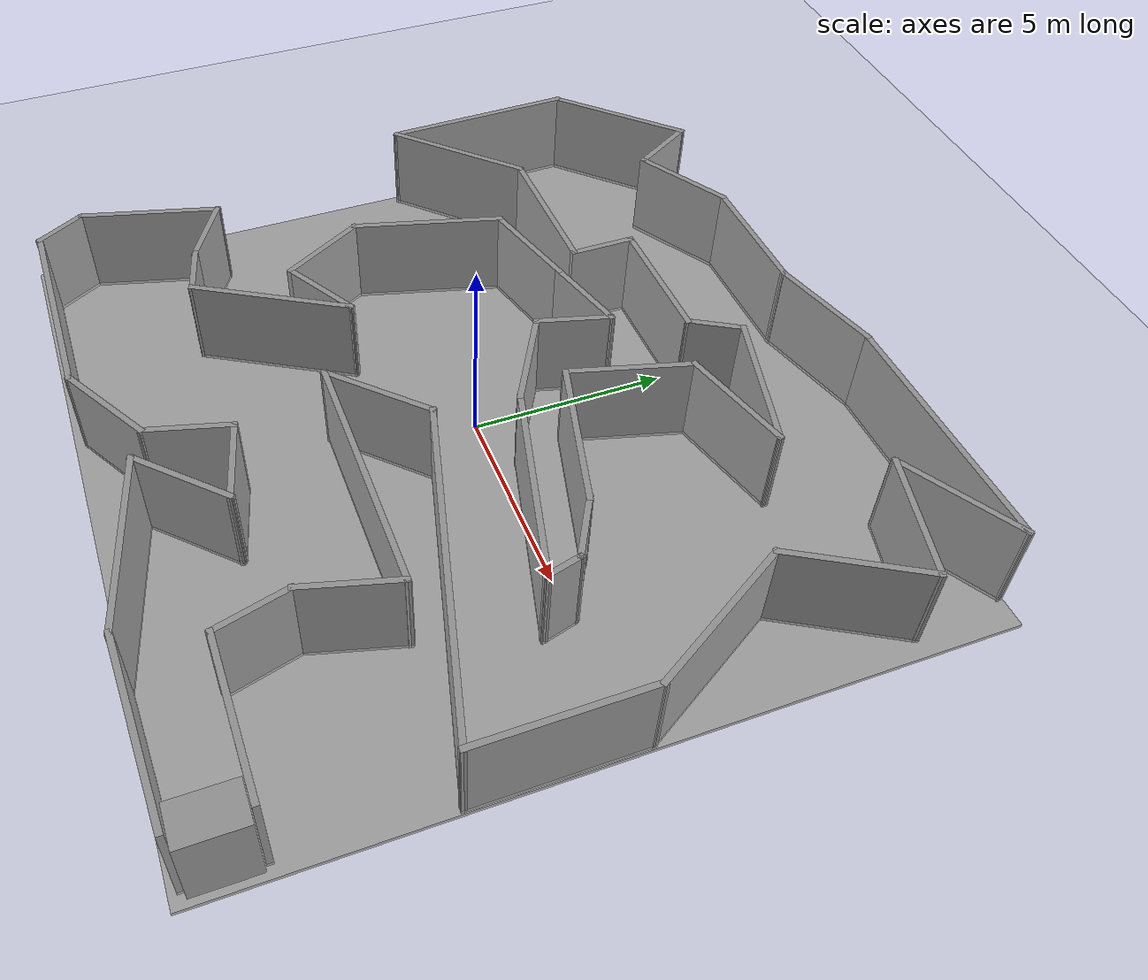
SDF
<sdf version="1.7">
 <world name="default">
  <model name="ground_plane">
   <static>1</static>
   <link name="link">
    <collision name="collision">
     <geometry><plane><normal>0 0 1</normal><size>100 100</size></plane></geometry>
     <surface><friction><ode><mu>100</mu><mu2>50</mu2></ode></friction></surface>
    </collision>
    <visual name="visual">
     <cast_shadows>0</cast_shadows>
     <geometry><plane><normal>0 0 1</normal><size>100 100</size></plane></geometry>
     <material>
      <script><uri>file://media/materials/scripts/gazebo.material</uri><name>Gazebo/Grey</name></script>
     </material>
    </visual>
   </link>
  </model>
  <light name="sun" type="directional">
   <pose>0 0 10 0 -0 0</pose>
   <diffuse>0.8 0.8 0.8 1</diffuse>
   <specular>0.2 0.2 0.2 1</specular>
   <attenuation>
    <range>1000</range>
    <constant>0.9</constant>
    <linear>0.01</linear>
    <quadratic>0.001</quadratic>
   </attenuation>
   <direction>-0.5 0.1 -0.9</direction>
   <spot><inner_angle>0</inner_angle><outer_angle>0</outer_angle><falloff>0</falloff></spot>
  </light>
  <scene><shadows>0</shadows><ambient>0.4 0.4 0.4 1</ambient><background>0.7 0.7 0.7 1</background></scene>
  <physics type="ode">
   <real_time_update_rate>1000</real_time_update_rate>
   <max_step_size>0.001</max_step_size>
   <real_time_factor>1</real_time_factor>
   <ode>
    <solver>
     <type>quick</type>
     <iters>150</iters>
     <precon_iters>0</precon_iters>
     <sor>1.4</sor>
     <use_dynamic_moi_rescaling>1</use_dynamic_moi_rescaling>
    </solver>
    <constraints>
     <cfm>1e-05</cfm>
     <erp>0.2</erp>
     <contact_max_correcting_vel>2000</contact_max_correcting_vel>
     <contact_surface_layer>0.01</contact_surface_layer>
    </constraints>
   </ode>
  </physics>
  <gravity>0 0 -9.8</gravity>
  <magnetic_field>6e-06 2.3e-05 -4.2e-05</magnetic_field>
  <atmosphere type="adiabatic"/>
  <audio><device>default</device></audio>
  <spherical_coordinates>
   <surface_model>EARTH_WGS84</surface_model>
   <latitude_deg>0</latitude_deg>
   <longitude_deg>0</longitude_deg>
   <elevation>0</elevation>
   <heading_deg>0</heading_deg>
  </spherical_coordinates>
  <model name="Maze_Thingy">
   <pose>-0.102453 -0.090928 -2.71563 0 -0 0</pose>
   <link name="Floor_0">
    <collision name="Floor_0_Collision">
     <geometry><box><size>19.2451 18.831 0.1</size></box></geometry>
     <pose>0 0 0.05 0 -0 0</pose>
    </collision>
    <visual name="Floor_0_Visual">
     <pose>0 0 0.05 0 -0 0</pose>
     <geometry><box><size>19.2451 18.831 0.1</size></box></geometry>
     <material>
      <script><uri>file://media/materials/scripts/gazebo.material</uri><name>Gazebo/Grey</name></script>
      <ambient>1 1 1 1</ambient>
     </material>
     <meta><layer>1</layer></meta>
    </visual>
    <pose>0 0 2.5 0 -0 0</pose>
   </link>
   <link name="Wall_0">
    <collision name="Wall_0_Collision">
     <geometry><box><size>2.5 0.15 2.5</size></box></geometry>
     <pose>0 0 1.25 0 -0 0</pose>
    </collision>
    <visual name="Wall_0_Visual">
     <pose>0 0 1.25 0 -0 0</pose>
     <geometry><box><size>2.5 0.15 2.5</size></box></geometry>
     <material>
      <script><uri>file://media/materials/scripts/gazebo.material</uri><name>Gazebo/Grey</name></script>
      <ambient>1 1 1 1</ambient>
     </material>
     <meta><layer>0</layer></meta>
    </visual>
    <pose>-1.93084 -1.51595 0 0 -0 0</pose>
   </link>
   <link name="Wall_10">
    <collision name="Wall_10_Collision">
     <geometry><box><size>3 0.15 2.5</size></box></geometry>
     <pose>0 0 1.25 0 -0 0</pose>
    </collision>
    <visual name="Wall_10_Visual">
     <pose>0 0 1.25 0 -0 0</pose>
     <geometry><box><size>3 0.15 2.5</size></box></geometry>
     <material>
      <script><uri>file://media/materials/scripts/gazebo.material</uri><name>Gazebo/Grey</name></script>
      <ambient>1 1 1 1</ambient>
     </material>
     <meta><layer>1</layer></meta>
    </visual>
    <pose>3.28617 5.33739 2.5 0 -0 -2.87979</pose>
   </link>
   <link name="Wall_11">
    <collision name="Wall_11_Collision">
     <geometry><box><size>3.25 0.15 2.5</size></box></geometry>
     <pose>0 0 1.25 0 -0 0</pose>
    </collision>
    <visual name="Wall_11_Visual">
     <pose>0 0 1.25 0 -0 0</pose>
     <geometry><box><size>3.25 0.15 2.5</size></box></geometry>
     <material>
      <script><uri>file://media/materials/scripts/gazebo.material</uri><name>Gazebo/Grey</name></script>
      <ambient>1 1 1 1</ambient>
     </material>
     <meta><layer>1</layer></meta>
    </visual>
    <pose>1.50855 3.47138 2.5 0 -0 -1.8326</pose>
   </link>
   <link name="Wall_12">
    <collision name="Wall_12_Collision">
     <geometry><box><size>4 0.15 2.5</size></box></geometry>
     <pose>0 0 1.25 0 -0 0</pose>
    </collision>
    <visual name="Wall_12_Visual">
     <pose>0 0 1.25 0 -0 0</pose>
     <geometry><box><size>4 0.15 2.5</size></box></geometry>
     <material>
      <script><uri>file://media/materials/scripts/gazebo.material</uri><name>Gazebo/Grey</name></script>
      <ambient>1 1 1 1</ambient>
     </material>
     <meta><layer>1</layer></meta>
    </visual>
    <pose>2.96679 1.47597 2.5 0 -0 -0.261799</pose>
   </link>
   <link name="Wall_13">
    <collision name="Wall_13_Collision">
     <geometry><box><size>1.75 0.15 2.5</size></box></geometry>
     <pose>0 0 1.25 0 -0 0</pose>
    </collision>
    <visual name="Wall_13_Visual">
     <pose>0 0 1.25 0 -0 0</pose>
     <geometry><box><size>1.75 0.15 2.5</size></box></geometry>
     <material>
      <script><uri>file://media/materials/scripts/gazebo.material</uri><name>Gazebo/Grey</name></script>
      <ambient>1 1 1 1</ambient>
     </material>
     <meta><layer>1</layer></meta>
    </visual>
    <pose>5.51902 0.577745 2.5 0 -0 -0.523599</pose>
   </link>
   <link name="Wall_14">
    <collision name="Wall_14_Collision">
     <geometry><box><size>1 0.15 2.5</size></box></geometry>
     <pose>0 0 1.25 0 -0 0</pose>
    </collision>
    <visual name="Wall_14_Visual">
     <pose>0 0 1.25 0 -0 0</pose>
     <geometry><box><size>1 0.15 2.5</size></box></geometry>
     <material>
      <script><uri>file://media/materials/scripts/gazebo.material</uri><name>Gazebo/Grey</name></script>
      <ambient>1 1 1 1</ambient>
     </material>
     <meta><layer>1</layer></meta>
    </visual>
    <pose>6.32184 -0.232774 2.5 0 -0 -1.309</pose>
   </link>
   <link name="Wall_15">
    <collision name="Wall_15_Collision">
     <geometry><box><size>5.25 0.15 2.5</size></box></geometry>
     <pose>0 0 1.25 0 -0 0</pose>
    </collision>
    <visual name="Wall_15_Visual">
     <pose>0 0 1.25 0 -0 0</pose>
     <geometry><box><size>5.25 0.15 2.5</size></box></geometry>
     <material>
      <script><uri>file://media/materials/scripts/gazebo.material</uri><name>Gazebo/Grey</name></script>
      <ambient>1 1 1 1</ambient>
     </material>
     <meta><layer>1</layer></meta>
    </visual>
    <pose>3.96872 0.016696 2.5 0 -0 2.87979</pose>
   </link>
   <link name="Wall_16">
    <collision name="Wall_16_Collision">
     <geometry><box><size>2.75 0.15 2.5</size></box></geometry>
     <pose>0 0 1.25 0 -0 0</pose>
    </collision>
    <visual name="Wall_16_Visual">
     <pose>0 0 1.25 0 -0 0</pose>
     <geometry><box><size>2.75 0.15 2.5</size></box></geometry>
     <material>
      <script><uri>file://media/materials/scripts/gazebo.material</uri><name>Gazebo/Grey</name></script>
      <ambient>1 1 1 1</ambient>
     </material>
     <meta><layer>1</layer></meta>
    </visual>
    <pose>0.379778 1.32668 2.5 0 -0 2.61799</pose>
   </link>
   <link name="Wall_17">
    <collision name="Wall_17_Collision">
     <geometry><box><size>2 0.15 2.5</size></box></geometry>
     <pose>0 0 1.25 0 -0 0</pose>
    </collision>
    <visual name="Wall_17_Visual">
     <pose>0 0 1.25 0 -0 0</pose>
     <geometry><box><size>2 0.15 2.5</size></box></geometry>
     <material>
      <script><uri>file://media/materials/scripts/gazebo.material</uri><name>Gazebo/Grey</name></script>
      <ambient>1 1 1 1</ambient>
     </material>
     <meta><layer>1</layer></meta>
    </visual>
    <pose>-0.506647 2.87017 2.5 0 -0 1.309</pose>
   </link>
   <link name="Wall_18">
    <collision name="Wall_18_Collision">
     <geometry><box><size>2.25 0.15 2.5</size></box></geometry>
     <pose>0 0 1.25 0 -0 0</pose>
    </collision>
    <visual name="Wall_18_Visual">
     <pose>0 0 1.25 0 -0 0</pose>
     <geometry><box><size>2.25 0.15 2.5</size></box></geometry>
     <material>
      <script><uri>file://media/materials/scripts/gazebo.material</uri><name>Gazebo/Grey</name></script>
      <ambient>1 1 1 1</ambient>
     </material>
     <meta><layer>1</layer></meta>
    </visual>
    <pose>-1.28146 3.49189 2.5 0 -0 -2.87979</pose>
   </link>
   <link name="Wall_19">
    <collision name="Wall_19_Collision">
     <geometry><box><size>2.75 0.15 2.5</size></box></geometry>
     <pose>0 0 1.25 0 -0 0</pose>
    </collision>
    <visual name="Wall_19_Visual">
     <pose>0 0 1.25 0 -0 0</pose>
     <geometry><box><size>2.75 0.15 2.5</size></box></geometry>
     <material>
      <script><uri>file://media/materials/scripts/gazebo.material</uri><name>Gazebo/Grey</name></script>
      <ambient>1 1 1 1</ambient>
     </material>
     <meta><layer>1</layer></meta>
    </visual>
    <pose>-3.55139 2.88366 2.5 0 -0 -2.87979</pose>
   </link>
   <link name="Wall_20">
    <collision name="Wall_20_Collision">
     <geometry><box><size>4 0.15 2.5</size></box></geometry>
     <pose>0 0 1.25 0 -0 0</pose>
    </collision>
    <visual name="Wall_20_Visual">
     <pose>0 0 1.25 0 -0 0</pose>
     <geometry><box><size>4 0.15 2.5</size></box></geometry>
     <material>
      <script><uri>file://media/materials/scripts/gazebo.material</uri><name>Gazebo/Grey</name></script>
      <ambient>1 1 1 1</ambient>
     </material>
     <meta><layer>1</layer></meta>
    </visual>
    <pose>-5.30532 0.687791 2.5 0 -0 -1.8326</pose>
   </link>
   <link name="Wall_21">
    <collision name="Wall_21_Collision">
     <geometry><box><size>2.5 0.15 2.5</size></box></geometry>
     <pose>0 0 1.25 0 -0 0</pose>
    </collision>
    <visual name="Wall_21_Visual">
     <pose>0 0 1.25 0 -0 0</pose>
     <geometry><box><size>2.5 0.15 2.5</size></box></geometry>
     <material>
      <script><uri>file://media/materials/scripts/gazebo.material</uri><name>Gazebo/Grey</name></script>
      <ambient>1 1 1 1</ambient>
     </material>
     <meta><layer>1</layer></meta>
    </visual>
    <pose>-5.21604 -2.1892 2.5 0 -0 -1.0472</pose>
   </link>
   <link name="Wall_22">
    <collision name="Wall_22_Collision">
     <geometry><box><size>2.25 0.15 2.5</size></box></geometry>
     <pose>0 0 1.25 0 -0 0</pose>
    </collision>
    <visual name="Wall_22_Visual">
     <pose>0 0 1.25 0 -0 0</pose>
     <geometry><box><size>2.25 0.15 2.5</size></box></geometry>
     <material>
      <script><uri>file://media/materials/scripts/gazebo.material</uri><name>Gazebo/Grey</name></script>
      <ambient>1 1 1 1</ambient>
     </material>
     <meta><layer>1</layer></meta>
    </visual>
    <pose>-3.71922 -2.68178 2.5 0 -0 0.523599</pose>
   </link>
   <link name="Wall_23">
    <collision name="Wall_23_Collision">
     <geometry><box><size>4.25 0.15 2.5</size></box></geometry>
     <pose>0 0 1.25 0 -0 0</pose>
    </collision>
    <visual name="Wall_23_Visual">
     <pose>0 0 1.25 0 -0 0</pose>
     <geometry><box><size>4.25 0.15 2.5</size></box></geometry>
     <material>
      <script><uri>file://media/materials/scripts/gazebo.material</uri><name>Gazebo/Grey</name></script>
      <ambient>1 1 1 1</ambient>
     </material>
     <meta><layer>1</layer></meta>
    </visual>
    <pose>-3.83489 -3.93213 2.5 0 -0 -2.0944</pose>
   </link>
   <link name="Wall_24">
    <collision name="Wall_24_Collision">
     <geometry><box><size>1.5 0.15 2.5</size></box></geometry>
     <pose>0 0 1.25 0 -0 0</pose>
    </collision>
    <visual name="Wall_24_Visual">
     <pose>0 0 1.25 0 -0 0</pose>
     <geometry><box><size>1.5 0.15 2.5</size></box></geometry>
     <material>
      <script><uri>file://media/materials/scripts/gazebo.material</uri><name>Gazebo/Grey</name></script>
      <ambient>1 1 1 1</ambient>
     </material>
     <meta><layer>1</layer></meta>
    </visual>
    <pose>-5.51189 -5.53278 2.5 0 -0 2.87979</pose>
   </link>
   <link name="Wall_25">
    <collision name="Wall_25_Collision">
     <geometry><box><size>2 0.15 2.5</size></box></geometry>
     <pose>0 0 1.25 0 -0 0</pose>
    </collision>
    <visual name="Wall_25_Visual">
     <pose>0 0 1.25 0 -0 0</pose>
     <geometry><box><size>2 0.15 2.5</size></box></geometry>
     <material>
      <script><uri>file://media/materials/scripts/gazebo.material</uri><name>Gazebo/Grey</name></script>
      <ambient>1 1 1 1</ambient>
     </material>
     <meta><layer>1</layer></meta>
    </visual>
    <pose>-6.96496 -4.89557 2.5 0 -0 2.61799</pose>
   </link>
   <link name="Wall_26">
    <collision name="Wall_26_Collision">
     <geometry><box><size>3.75 0.15 2.5</size></box></geometry>
     <pose>0 0 1.25 0 -0 0</pose>
    </collision>
    <visual name="Wall_26_Visual">
     <pose>0 0 1.25 0 -0 0</pose>
     <geometry><box><size>3.75 0.15 2.5</size></box></geometry>
     <material>
      <script><uri>file://media/materials/scripts/gazebo.material</uri><name>Gazebo/Grey</name></script>
      <ambient>1 1 1 1</ambient>
     </material>
     <meta><layer>1</layer></meta>
    </visual>
    <pose>-8.23191 -6.17174 2.5 0 -0 -1.8326</pose>
   </link>
   <link name="Wall_27">
    <collision name="Wall_27_Collision">
     <geometry><box><size>1.5 0.15 2.5</size></box></geometry>
     <pose>0 0 1.25 0 -0 0</pose>
    </collision>
    <visual name="Wall_27_Visual">
     <pose>0 0 1.25 0 -0 0</pose>
     <geometry><box><size>1.5 0.15 2.5</size></box></geometry>
     <material>
      <script><uri>file://media/materials/scripts/gazebo.material</uri><name>Gazebo/Grey</name></script>
      <ambient>1 1 1 1</ambient>
     </material>
     <meta><layer>1</layer></meta>
    </visual>
    <pose>-8.36029 -8.49497 2.5 0 -0 -1.0472</pose>
   </link>
   <link name="Wall_28">
    <collision name="Wall_28_Collision">
     <geometry><box><size>5.5 0.15 2.5</size></box></geometry>
     <pose>0 0 1.25 0 -0 0</pose>
    </collision>
    <visual name="Wall_28_Visual">
     <pose>0 0 1.25 0 -0 0</pose>
     <geometry><box><size>5.5 0.15 2.5</size></box></geometry>
     <material>
      <script><uri>file://media/materials/scripts/gazebo.material</uri><name>Gazebo/Grey</name></script>
      <ambient>1 1 1 1</ambient>
     </material>
     <meta><layer>1</layer></meta>
    </visual>
    <pose>-5.34779 -9.07954 2.5 0 -0 0</pose>
   </link>
   <link name="Wall_29">
    <collision name="Wall_29_Collision">
     <geometry><box><size>2.75 0.15 2.5</size></box></geometry>
     <pose>0 0 1.25 0 -0 0</pose>
    </collision>
    <visual name="Wall_29_Visual">
     <pose>0 0 1.25 0 -0 0</pose>
     <geometry><box><size>2.75 0.15 2.5</size></box></geometry>
     <material>
      <script><uri>file://media/materials/scripts/gazebo.material</uri><name>Gazebo/Grey</name></script>
      <ambient>1 1 1 1</ambient>
     </material>
     <meta><layer>1</layer></meta>
    </visual>
    <pose>-1.54695 -8.42954 2.5 0 -0 0.523599</pose>
   </link>
   <link name="Wall_30">
    <collision name="Wall_30_Collision">
     <geometry><box><size>2.25 0.15 2.5</size></box></geometry>
     <pose>0 0 1.25 0 -0 0</pose>
    </collision>
    <visual name="Wall_30_Visual">
     <pose>0 0 1.25 0 -0 0</pose>
     <geometry><box><size>2.25 0.15 2.5</size></box></geometry>
     <material>
      <script><uri>file://media/materials/scripts/gazebo.material</uri><name>Gazebo/Grey</name></script>
      <ambient>1 1 1 1</ambient>
     </material>
     <meta><layer>1</layer></meta>
    </visual>
    <pose>-0.14936 -6.76532 2.5 0 -0 1.309</pose>
   </link>
   <link name="Wall_31">
    <collision name="Wall_31_Collision">
     <geometry><box><size>2.25 0.15 2.5</size></box></geometry>
     <pose>0 0 1.25 0 -0 0</pose>
    </collision>
    <visual name="Wall_31_Visual">
     <pose>0 0 1.25 0 -0 0</pose>
     <geometry><box><size>2.25 0.15 2.5</size></box></geometry>
     <material>
      <script><uri>file://media/materials/scripts/gazebo.material</uri><name>Gazebo/Grey</name></script>
      <ambient>1 1 1 1</ambient>
     </material>
     <meta><layer>1</layer></meta>
    </visual>
    <pose>1.13662 -6.02286 2.5 0 -0 -0.261799</pose>
   </link>
   <link name="Wall_32">
    <collision name="Wall_32_Collision">
     <geometry><box><size>2.75 0.15 2.5</size></box></geometry>
     <pose>0 0 1.25 0 -0 0</pose>
    </collision>
    <visual name="Wall_32_Visual">
     <pose>0 0 1.25 0 -0 0</pose>
     <geometry><box><size>2.75 0.15 2.5</size></box></geometry>
     <material>
      <script><uri>file://media/materials/scripts/gazebo.material</uri><name>Gazebo/Grey</name></script>
      <ambient>1 1 1 1</ambient>
     </material>
     <meta><layer>1</layer></meta>
    </visual>
    <pose>1.23161 -7.21386 2.5 0 -0 -2.35619</pose>
   </link>
   <link name="Wall_33">
    <collision name="Wall_33_Collision">
     <geometry><box><size>4.75 0.15 2.5</size></box></geometry>
     <pose>0 0 1.25 0 -0 0</pose>
    </collision>
    <visual name="Wall_33_Visual">
     <pose>0 0 1.25 0 -0 0</pose>
     <geometry><box><size>4.75 0.15 2.5</size></box></geometry>
     <material>
      <script><uri>file://media/materials/scripts/gazebo.material</uri><name>Gazebo/Grey</name></script>
      <ambient>1 1 1 1</ambient>
     </material>
     <meta><layer>1</layer></meta>
    </visual>
    <pose>2.534 -8.72838 2.5 0 -0 -0.261799</pose>
   </link>
   <link name="Wall_37">
    <collision name="Wall_37_Collision">
     <geometry><box><size>4 0.15 2.5</size></box></geometry>
     <pose>0 0 1.25 0 -0 0</pose>
    </collision>
    <visual name="Wall_37_Visual">
     <pose>0 0 1.25 0 -0 0</pose>
     <geometry><box><size>4 0.15 2.5</size></box></geometry>
     <material>
      <script><uri>file://media/materials/scripts/gazebo.material</uri><name>Gazebo/Grey</name></script>
      <ambient>1 1 1 1</ambient>
     </material>
     <meta><layer>1</layer></meta>
    </visual>
    <pose>-8.15531 7.5164 2.5 0 -0 0.785398</pose>
   </link>
   <link name="Wall_38">
    <collision name="Wall_38_Collision">
     <geometry><box><size>2 0.15 2.5</size></box></geometry>
     <pose>0 0 1.25 0 -0 0</pose>
    </collision>
    <visual name="Wall_38_Visual">
     <pose>0 0 1.25 0 -0 0</pose>
     <geometry><box><size>2 0.15 2.5</size></box></geometry>
     <material>
      <script><uri>file://media/materials/scripts/gazebo.material</uri><name>Gazebo/Grey</name></script>
      <ambient>1 1 1 1</ambient>
     </material>
     <meta><layer>1</layer></meta>
    </visual>
    <pose>-6.33164 8.07651 2.5 0 -0 -1.0472</pose>
   </link>
   <link name="Wall_39">
    <collision name="Wall_39_Collision">
     <geometry><box><size>2.75 0.15 2.5</size></box></geometry>
     <pose>0 0 1.25 0 -0 0</pose>
    </collision>
    <visual name="Wall_39_Visual">
     <pose>0 0 1.25 0 -0 0</pose>
     <geometry><box><size>2.75 0.15 2.5</size></box></geometry>
     <material>
      <script><uri>file://media/materials/scripts/gazebo.material</uri><name>Gazebo/Grey</name></script>
      <ambient>1 1 1 1</ambient>
     </material>
     <meta><layer>1</layer></meta>
    </visual>
    <pose>-4.7433 7.92543 2.5 0 -0 0.523599</pose>
   </link>
   <link name="Wall_4">
    <collision name="Wall_4_Collision">
     <geometry><box><size>4 0.15 2.5</size></box></geometry>
     <pose>0 0 1.25 0 -0 0</pose>
    </collision>
    <visual name="Wall_4_Visual">
     <pose>0 0 1.25 0 -0 0</pose>
     <geometry><box><size>4 0.15 2.5</size></box></geometry>
     <material>
      <script><uri>file://media/materials/scripts/gazebo.material</uri><name>Gazebo/Grey</name></script>
      <ambient>1 1 1 1</ambient>
     </material>
     <meta><layer>1</layer></meta>
    </visual>
    <pose>-4.76472 3.86882 2.5 0 -0 0</pose>
   </link>
   <link name="Wall_41">
    <collision name="Wall_41_Collision">
     <geometry><box><size>3.5 0.15 2.5</size></box></geometry>
     <pose>0 0 1.25 0 -0 0</pose>
    </collision>
    <visual name="Wall_41_Visual">
     <pose>0 0 1.25 0 -0 0</pose>
     <geometry><box><size>3.5 0.15 2.5</size></box></geometry>
     <material>
      <script><uri>file://media/materials/scripts/gazebo.material</uri><name>Gazebo/Grey</name></script>
      <ambient>1 1 1 1</ambient>
     </material>
     <meta><layer>1</layer></meta>
    </visual>
    <pose>-1.94247 8.57543 2.5 0 -0 0</pose>
   </link>
   <link name="Wall_42">
    <collision name="Wall_42_Collision">
     <geometry><box><size>3 0.15 2.5</size></box></geometry>
     <pose>0 0 1.25 0 -0 0</pose>
    </collision>
    <visual name="Wall_42_Visual">
     <pose>0 0 1.25 0 -0 0</pose>
     <geometry><box><size>3 0.15 2.5</size></box></geometry>
     <material>
      <script><uri>file://media/materials/scripts/gazebo.material</uri><name>Gazebo/Grey</name></script>
      <ambient>1 1 1 1</ambient>
     </material>
     <meta><layer>1</layer></meta>
    </visual>
    <pose>1.10898 8.94425 2.5 0 -0 0.261799</pose>
   </link>
   <link name="Wall_43">
    <collision name="Wall_43_Collision">
     <geometry><box><size>6.5 0.15 2.5</size></box></geometry>
     <pose>0 0 1.25 0 -0 0</pose>
    </collision>
    <visual name="Wall_43_Visual">
     <pose>0 0 1.25 0 -0 0</pose>
     <geometry><box><size>6.5 0.15 2.5</size></box></geometry>
     <material>
      <script><uri>file://media/materials/scripts/gazebo.material</uri><name>Gazebo/Grey</name></script>
      <ambient>1 1 1 1</ambient>
     </material>
     <meta><layer>1</layer></meta>
    </visual>
    <pose>5.66042 9.31307 2.5 0 -0 0</pose>
   </link>
   <link name="Wall_44">
    <collision name="Wall_44_Collision">
     <geometry><box><size>3.25 0.15 2.5</size></box></geometry>
     <pose>0 0 1.25 0 -0 0</pose>
    </collision>
    <visual name="Wall_44_Visual">
     <pose>0 0 1.25 0 -0 0</pose>
     <geometry><box><size>3.25 0.15 2.5</size></box></geometry>
     <material>
      <script><uri>file://media/materials/scripts/gazebo.material</uri><name>Gazebo/Grey</name></script>
      <ambient>1 1 1 1</ambient>
     </material>
     <meta><layer>1</layer></meta>
    </visual>
    <pose>7.49308 8.53807 2.5 0 -0 -2.61799</pose>
   </link>
   <link name="Wall_45">
    <collision name="Wall_45_Collision">
     <geometry><box><size>3.25 0.15 2.5</size></box></geometry>
     <pose>0 0 1.25 0 -0 0</pose>
    </collision>
    <visual name="Wall_45_Visual">
     <pose>0 0 1.25 0 -0 0</pose>
     <geometry><box><size>3.25 0.15 2.5</size></box></geometry>
     <material>
      <script><uri>file://media/materials/scripts/gazebo.material</uri><name>Gazebo/Grey</name></script>
      <ambient>1 1 1 1</ambient>
     </material>
     <meta><layer>1</layer></meta>
    </visual>
    <pose>7.64793 7.3619 2.5 0 -0 -0.261799</pose>
   </link>
   <link name="Wall_46">
    <collision name="Wall_46_Collision">
     <geometry><box><size>3.5 0.15 2.5</size></box></geometry>
     <pose>0 0 1.25 0 -0 0</pose>
    </collision>
    <visual name="Wall_46_Visual">
     <pose>0 0 1.25 0 -0 0</pose>
     <geometry><box><size>3.5 0.15 2.5</size></box></geometry>
     <material>
      <script><uri>file://media/materials/scripts/gazebo.material</uri><name>Gazebo/Grey</name></script>
      <ambient>1 1 1 1</ambient>
     </material>
     <meta><layer>1</layer></meta>
    </visual>
    <pose>8.30761 5.51014 2.5 0 -0 -2.0944</pose>
   </link>
   <link name="Wall_47">
    <collision name="Wall_47_Collision">
     <geometry><box><size>4.25 0.15 2.5</size></box></geometry>
     <pose>0 0 1.25 0 -0 0</pose>
    </collision>
    <visual name="Wall_47_Visual">
     <pose>0 0 1.25 0 -0 0</pose>
     <geometry><box><size>4.25 0.15 2.5</size></box></geometry>
     <material>
      <script><uri>file://media/materials/scripts/gazebo.material</uri><name>Gazebo/Grey</name></script>
      <ambient>1 1 1 1</ambient>
     </material>
     <meta><layer>1</layer></meta>
    </visual>
    <pose>8.49511 2.28419 2.5 0 -0 -1.0472</pose>
   </link>
   <link name="Wall_48">
    <collision name="Wall_48_Collision">
     <geometry><box><size>4.25 0.15 2.5</size></box></geometry>
     <pose>0 0 1.25 0 -0 0</pose>
    </collision>
    <visual name="Wall_48_Visual">
     <pose>0 0 1.25 0 -0 0</pose>
     <geometry><box><size>4.25 0.15 2.5</size></box></geometry>
     <material>
      <script><uri>file://media/materials/scripts/gazebo.material</uri><name>Gazebo/Grey</name></script>
      <ambient>1 1 1 1</ambient>
     </material>
     <meta><layer>1</layer></meta>
    </visual>
    <pose>9.52011 -1.54116 2.5 0 -0 -1.5708</pose>
   </link>
   <link name="Wall_49">
    <collision name="Wall_49_Collision">
     <geometry><box><size>8.75 0.15 2.5</size></box></geometry>
     <pose>0 0 1.25 0 -0 0</pose>
    </collision>
    <visual name="Wall_49_Visual">
     <pose>0 0 1.25 0 -0 0</pose>
     <geometry><box><size>8.75 0.15 2.5</size></box></geometry>
     <material>
      <script><uri>file://media/materials/scripts/gazebo.material</uri><name>Gazebo/Grey</name></script>
      <ambient>1 1 1 1</ambient>
     </material>
     <meta><layer>1</layer></meta>
    </visual>
    <pose>5.36663 -2.47824 2.5 0 -0 2.87979</pose>
   </link>
   <link name="Wall_5">
    <collision name="Wall_5_Collision">
     <geometry><box><size>1.75 0.15 2.5</size></box></geometry>
     <pose>0 0 1.25 0 -0 0</pose>
    </collision>
    <visual name="Wall_5_Visual">
     <pose>0 0 1.25 0 -0 0</pose>
     <geometry><box><size>1.75 0.15 2.5</size></box></geometry>
     <material>
      <script><uri>file://media/materials/scripts/gazebo.material</uri><name>Gazebo/Grey</name></script>
      <ambient>1 1 1 1</ambient>
     </material>
     <meta><layer>1</layer></meta>
    </visual>
    <pose>-2.83972 4.66882 2.5 0 -0 1.5708</pose>
   </link>
   <link name="Wall_50">
    <collision name="Wall_50_Collision">
     <geometry><box><size>3 0.15 2.5</size></box></geometry>
     <pose>0 0 1.25 0 -0 0</pose>
    </collision>
    <visual name="Wall_50_Visual">
     <pose>0 0 1.25 0 -0 0</pose>
     <geometry><box><size>3 0.15 2.5</size></box></geometry>
     <material>
      <script><uri>file://media/materials/scripts/gazebo.material</uri><name>Gazebo/Grey</name></script>
      <ambient>1 1 1 1</ambient>
     </material>
     <meta><layer>1</layer></meta>
    </visual>
    <pose>0.205522 -2.37295 2.5 0 -0 -2.35619</pose>
   </link>
   <link name="Wall_51">
    <collision name="Wall_51_Collision">
     <geometry><box><size>6.5 0.15 2.5</size></box></geometry>
     <pose>0 0 1.25 0 -0 0</pose>
    </collision>
    <visual name="Wall_51_Visual">
     <pose>0 0 1.25 0 -0 0</pose>
     <geometry><box><size>6.5 0.15 2.5</size></box></geometry>
     <material>
      <script><uri>file://media/materials/scripts/gazebo.material</uri><name>Gazebo/Grey</name></script>
      <ambient>1 1 1 1</ambient>
     </material>
     <meta><layer>1</layer></meta>
    </visual>
    <pose>2.3729 -3.38057 2.5 0 -0 0</pose>
   </link>
   <link name="Wall_52">
    <collision name="Wall_52_Collision">
     <geometry><box><size>2.5 0.15 2.5</size></box></geometry>
     <pose>0 0 1.25 0 -0 0</pose>
    </collision>
    <visual name="Wall_52_Visual">
     <pose>0 0 1.25 0 -0 0</pose>
     <geometry><box><size>2.5 0.15 2.5</size></box></geometry>
     <material>
      <script><uri>file://media/materials/scripts/gazebo.material</uri><name>Gazebo/Grey</name></script>
      <ambient>1 1 1 1</ambient>
     </material>
     <meta><layer>1</layer></meta>
    </visual>
    <pose>5.24378 -4.51553 2.5 0 -0 -1.8326</pose>
   </link>
   <link name="Wall_53">
    <collision name="Wall_53_Collision">
     <geometry><box><size>2 0.15 2.5</size></box></geometry>
     <pose>0 0 1.25 0 -0 0</pose>
    </collision>
    <visual name="Wall_53_Visual">
     <pose>0 0 1.25 0 -0 0</pose>
     <geometry><box><size>2 0.15 2.5</size></box></geometry>
     <material>
      <script><uri>file://media/materials/scripts/gazebo.material</uri><name>Gazebo/Grey</name></script>
      <ambient>1 1 1 1</ambient>
     </material>
     <meta><layer>1</layer></meta>
    </visual>
    <pose>5.17908 -6.54398 2.5 0 -0 -1.309</pose>
   </link>
   <link name="Wall_54">
    <collision name="Wall_54_Collision">
     <geometry><box><size>4 0.15 2.5</size></box></geometry>
     <pose>0 0 1.25 0 -0 0</pose>
    </collision>
    <visual name="Wall_54_Visual">
     <pose>0 0 1.25 0 -0 0</pose>
     <geometry><box><size>4 0.15 2.5</size></box></geometry>
     <material>
      <script><uri>file://media/materials/scripts/gazebo.material</uri><name>Gazebo/Grey</name></script>
      <ambient>1 1 1 1</ambient>
     </material>
     <meta><layer>1</layer></meta>
    </visual>
    <pose>7.34349 -7.43746 2.5 0 -0 0</pose>
   </link>
   <link name="Wall_56">
    <collision name="Wall_56_Collision">
     <geometry><box><size>4 0.15 2.5</size></box></geometry>
     <pose>0 0 1.25 0 -0 0</pose>
    </collision>
    <visual name="Wall_56_Visual">
     <pose>0 0 1.25 0 -0 0</pose>
     <geometry><box><size>4 0.15 2.5</size></box></geometry>
     <material>
      <script><uri>file://media/materials/scripts/gazebo.material</uri><name>Gazebo/Grey</name></script>
      <ambient>1 1 1 1</ambient>
     </material>
     <meta><layer>1</layer></meta>
    </visual>
    <pose>-8.0509 2.50764 2.5 0 -0 -2.35619</pose>
   </link>
   <link name="Wall_57">
    <collision name="Wall_57_Collision">
     <geometry><box><size>5.15985 0.15 2.5</size></box></geometry>
     <pose>0 0 1.25 0 -0 0</pose>
    </collision>
    <visual name="Wall_57_Visual">
     <pose>0 0 1.25 0 -0 0</pose>
     <geometry><box><size>5.15985 0.15 2.5</size></box></geometry>
     <material>
      <script><uri>file://media/materials/scripts/gazebo.material</uri><name>Gazebo/Grey</name></script>
      <ambient>1 1 1 1</ambient>
     </material>
     <meta><layer>1</layer></meta>
    </visual>
    <pose>-9.46429 3.65084 2.5 0 -0 1.59164</pose>
   </link>
   <link name="Wall_59">
    <collision name="Wall_59_Collision">
     <geometry><box><size>4.63375 0.15 2.5</size></box></geometry>
     <pose>0 0 1.25 0 -0 0</pose>
    </collision>
    <visual name="Wall_59_Visual">
     <pose>0 0 1.25 0 -0 0</pose>
     <geometry><box><size>4.63375 0.15 2.5</size></box></geometry>
     <material>
      <script><uri>file://media/materials/scripts/gazebo.material</uri><name>Gazebo/Grey</name></script>
      <ambient>1 1 1 1</ambient>
     </material>
     <meta><layer>1</layer></meta>
    </visual>
    <pose>6.99597 -9.24097 2.5 0 -0 -3.1047</pose>
   </link>
   <link name="Wall_7">
    <collision name="Wall_7_Collision">
     <geometry><box><size>3.5 0.15 2.5</size></box></geometry>
     <pose>0 0 1.25 0 -0 0</pose>
    </collision>
    <visual name="Wall_7_Visual">
     <pose>0 0 1.25 0 -0 0</pose>
     <geometry><box><size>3.5 0.15 2.5</size></box></geometry>
     <material>
      <script><uri>file://media/materials/scripts/gazebo.material</uri><name>Gazebo/Grey</name></script>
      <ambient>1 1 1 1</ambient>
     </material>
     <meta><layer>1</layer></meta>
    </visual>
    <pose>-1.16472 5.46882 2.5 0 -0 0</pose>
   </link>
   <link name="Wall_8">
    <collision name="Wall_8_Collision">
     <geometry><box><size>1.5 0.15 2.5</size></box></geometry>
     <pose>0 0 1.25 0 -0 0</pose>
    </collision>
    <visual name="Wall_8_Visual">
     <pose>0 0 1.25 0 -0 0</pose>
     <geometry><box><size>1.5 0.15 2.5</size></box></geometry>
     <material>
      <script><uri>file://media/materials/scripts/gazebo.material</uri><name>Gazebo/Grey</name></script>
      <ambient>1 1 1 1</ambient>
     </material>
     <meta><layer>1</layer></meta>
    </visual>
    <pose>0.847776 6.05338 2.5 0 -0 1.0472</pose>
   </link>
   <link name="Wall_9">
    <collision name="Wall_9_Collision">
     <geometry><box><size>3.75 0.15 2.5</size></box></geometry>
     <pose>0 0 1.25 0 -0 0</pose>
    </collision>
    <visual name="Wall_9_Visual">
     <pose>0 0 1.25 0 -0 0</pose>
     <geometry><box><size>3.75 0.15 2.5</size></box></geometry>
     <material>
      <script><uri>file://media/materials/scripts/gazebo.material</uri><name>Gazebo/Grey</name></script>
      <ambient>1 1 1 1</ambient>
     </material>
     <meta><layer>1</layer></meta>
    </visual>
    <pose>2.92394 6.17208 2.5 0 -0 -0.261799</pose>
   </link>
   <static>1</static>
  </model>
  <model name="unit_box">
   <pose>8.90809 -8.39245 0.990677 0 -0 0</pose>
   <link name="link">
    <inertial>
     <mass>1</mass>
     <inertia>
      <ixx>0.166667</ixx>
      <ixy>0</ixy>
      <ixz>0</ixz>
      <iyy>0.166667</iyy>
      <iyz>0</iyz>
      <izz>0.166667</izz>
     </inertia>
    </inertial>
    <collision name="collision"><geometry><box><size>1 1.52821 1.98135</size></box></geometry></collision>
    <visual name="visual">
     <geometry><box><size>1 1.52821 1.98135</size></box></geometry>
     <material>
      <script><name>Gazebo/Grey</name><uri>file://media/materials/scripts/gazebo.material</uri></script>
     </material>
    </visual>
   </link>
  </model>
 </world>
</sdf>
